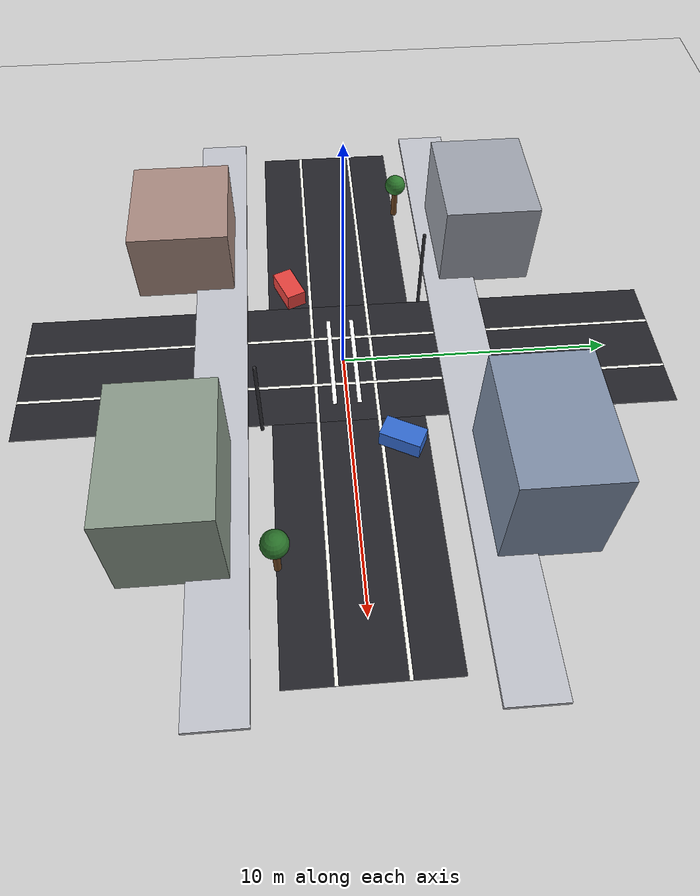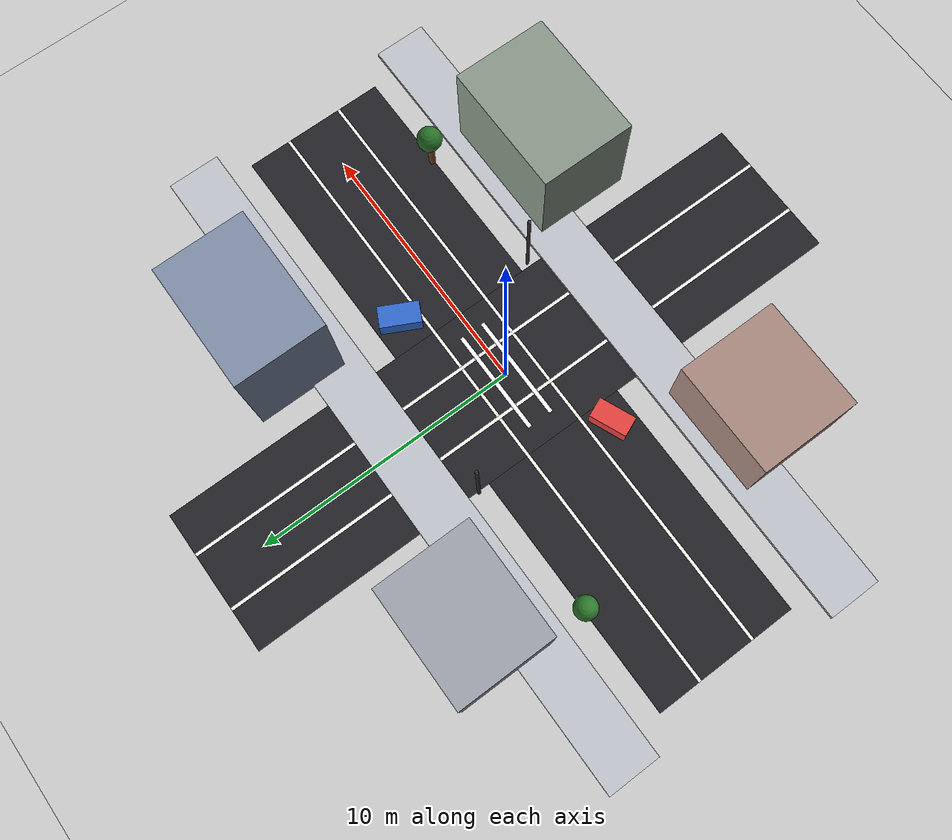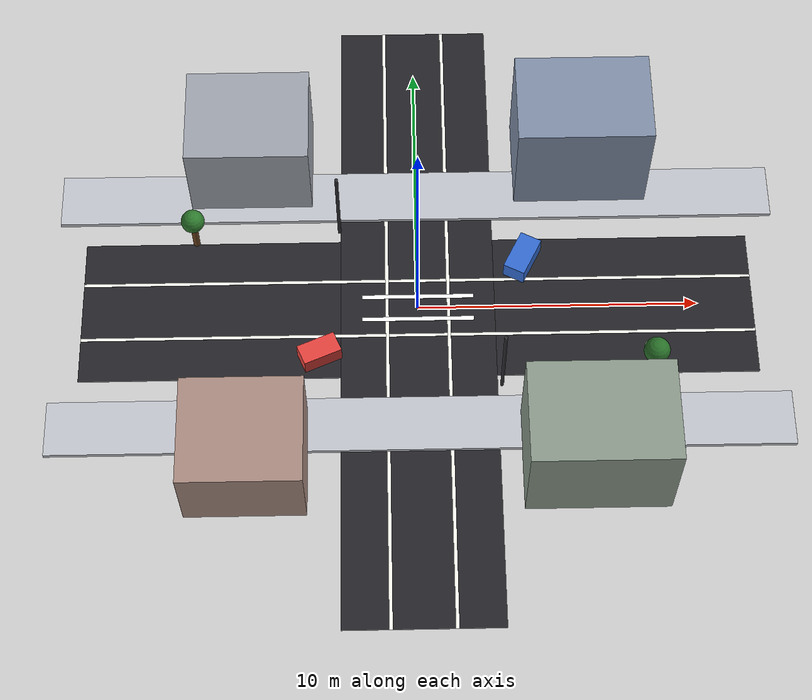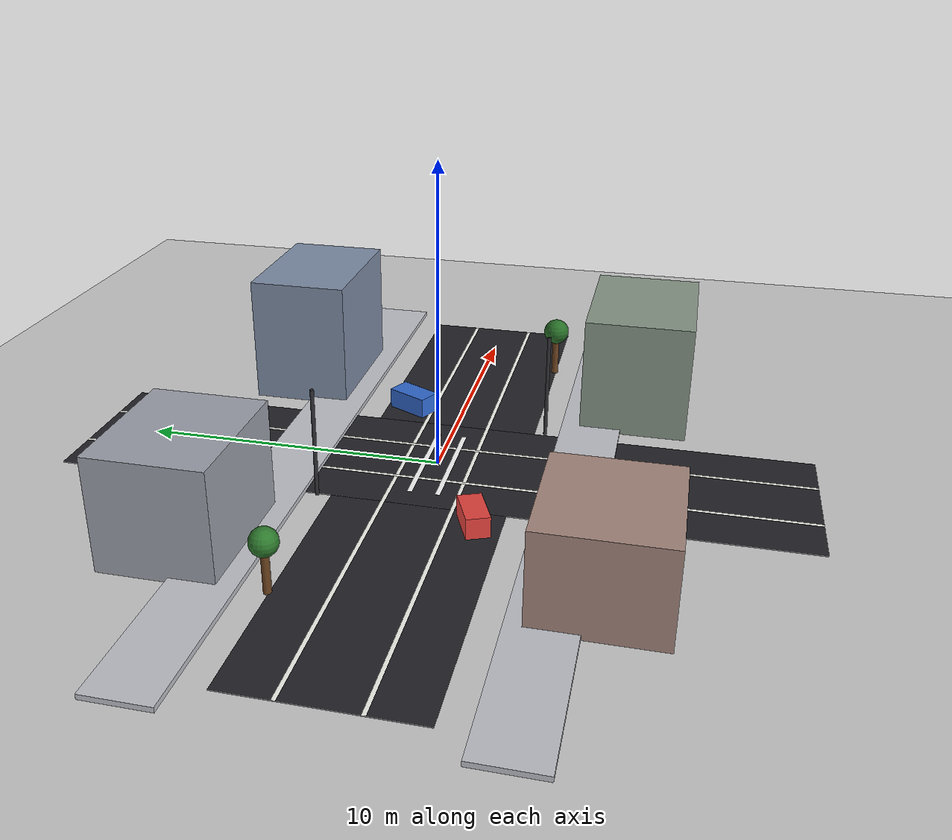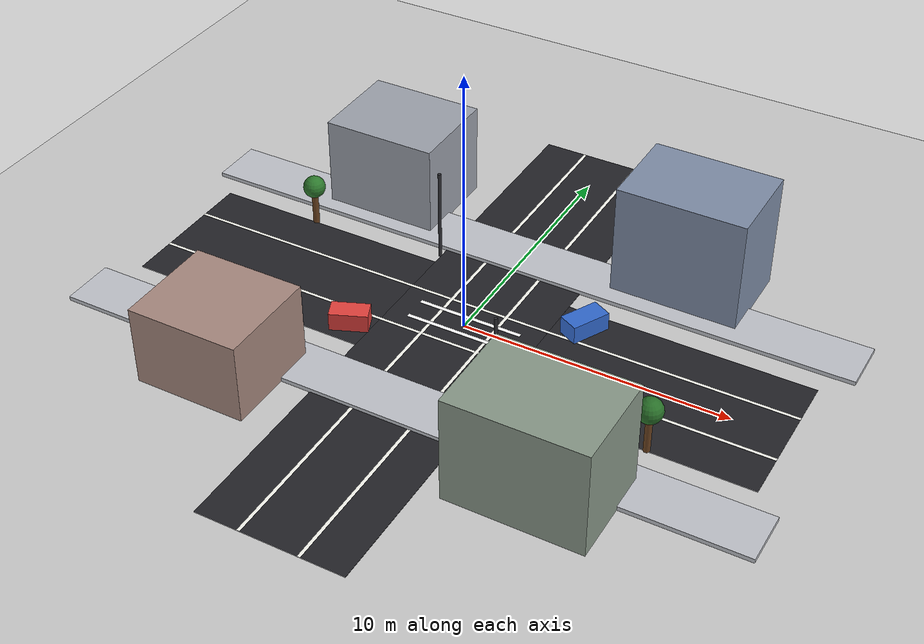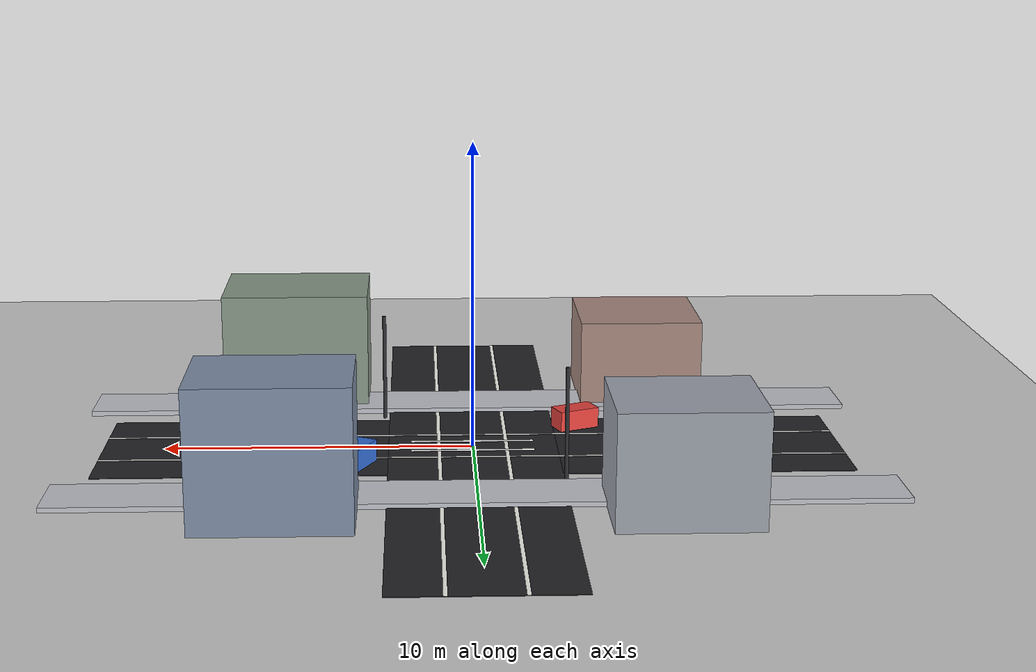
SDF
<?xml version="1.0" encoding='utf-8'?>
<sdf version="1.7">
  <world name="gimbal_sim_world">

    <gravity>0 0 -9.8</gravity>
    <magnetic_field>6e-06 2.3e-05 -4.2e-05</magnetic_field>

    <scene>
      <grid>false</grid>
      <ambient>0.38 0.40 0.44 1</ambient>
      <background>0.62 0.72 0.82 1</background>
      <shadows>false</shadows>
    </scene>

    <plugin filename="libignition-gazebo-physics-system.so" name="ignition::gazebo::systems::Physics">
    </plugin>

    <plugin filename="libignition-gazebo-scene-broadcaster-system.so" name="ignition::gazebo::systems::SceneBroadcaster">
    </plugin>

    <plugin filename="libignition-gazebo-user-commands-system.so" name="ignition::gazebo::systems::UserCommands">
    </plugin>

    <!-- Generates rendering sensor data -->
    <plugin filename="libignition-gazebo-sensors-system.so" name="ignition::gazebo::systems::Sensors">
      <render_engine>ogre</render_engine>
    </plugin>

    <plugin filename="libignition-gazebo-imu-system.so" name="ignition::gazebo::systems::Imu">
    </plugin>

    <!-- Light -->
    <light type='directional' name='direct_light'>
      <cast_shadows>false</cast_shadows>
      <pose>6.35 7.6 10 0 0 0</pose>
      <diffuse>1.0 1.0 1.0 1</diffuse>
      <specular>0.5 0.5 0.5 1</specular>
      <attenuation>
        <range>1000</range>
        <constant>0.9</constant>
        <linear>0.01</linear>
        <quadratic>0.001</quadratic>
      </attenuation>
      <direction>0 0 -1</direction>
    </light>

    <!-- Ground plane -->
    <model name="ground_plane">
      <static>true</static>
      <link name="link">
        <collision name="collision">
          <geometry>
            <plane>
              <normal>0 0 1</normal>
              <size>100 100</size>
            </plane>
          </geometry>
        </collision>
        <visual name="visual">
          <geometry>
            <plane>
              <normal>0 0 1</normal>
              <size>100 100</size>
            </plane>
          </geometry>
          <material>
            <ambient>0.8 0.8 0.8 1</ambient>
            <diffuse>0.8 0.8 0.8 1</diffuse>
          </material>
        </visual>
      </link>
    </model>

    <!-- Main roads -->
    <model name="main_road_x">
      <static>true</static>
      <pose>0 0 0.01 0 0 0</pose>
      <link name="link">
        <collision name="collision">
          <geometry>
            <box>
              <size>24 5.5 0.02</size>
            </box>
          </geometry>
        </collision>
        <visual name="visual">
          <geometry>
            <box>
              <size>24 5.5 0.02</size>
            </box>
          </geometry>
          <material>
            <ambient>0.10 0.10 0.11 1</ambient>
            <diffuse>0.14 0.14 0.16 1</diffuse>
          </material>
        </visual>
      </link>
    </model>

    <model name="main_road_y">
      <static>true</static>
      <pose>0 0 0.012 0 0 0</pose>
      <link name="link">
        <collision name="collision">
          <geometry>
            <box>
              <size>5.5 24 0.02</size>
            </box>
          </geometry>
        </collision>
        <visual name="visual">
          <geometry>
            <box>
              <size>5.5 24 0.02</size>
            </box>
          </geometry>
          <material>
            <ambient>0.10 0.10 0.11 1</ambient>
            <diffuse>0.14 0.14 0.16 1</diffuse>
          </material>
        </visual>
      </link>
    </model>

    <!-- Lane markings -->
    <model name="lane_line_x1">
      <static>true</static>
      <pose>0 1.1 0.02 0 0 0</pose>
      <link name="link">
        <visual name="visual">
          <geometry>
            <box>
              <size>24 0.12 0.01</size>
            </box>
          </geometry>
          <material>
            <ambient>0.95 0.95 0.90 1</ambient>
            <diffuse>0.98 0.98 0.95 1</diffuse>
          </material>
        </visual>
      </link>
    </model>

    <model name="lane_line_x2">
      <static>true</static>
      <pose>0 -1.1 0.02 0 0 0</pose>
      <link name="link">
        <visual name="visual">
          <geometry>
            <box>
              <size>24 0.12 0.01</size>
            </box>
          </geometry>
          <material>
            <ambient>0.95 0.95 0.90 1</ambient>
            <diffuse>0.98 0.98 0.95 1</diffuse>
          </material>
        </visual>
      </link>
    </model>

    <model name="lane_line_y1">
      <static>true</static>
      <pose>1.1 0 0.021 0 0 0</pose>
      <link name="link">
        <visual name="visual">
          <geometry>
            <box>
              <size>0.12 24 0.01</size>
            </box>
          </geometry>
          <material>
            <ambient>0.95 0.95 0.90 1</ambient>
            <diffuse>0.98 0.98 0.95 1</diffuse>
          </material>
        </visual>
      </link>
    </model>

    <model name="lane_line_y2">
      <static>true</static>
      <pose>-1.1 0 0.021 0 0 0</pose>
      <link name="link">
        <visual name="visual">
          <geometry>
            <box>
              <size>0.12 24 0.01</size>
            </box>
          </geometry>
          <material>
            <ambient>0.95 0.95 0.90 1</ambient>
            <diffuse>0.98 0.98 0.95 1</diffuse>
          </material>
        </visual>
      </link>
    </model>

    <!-- Crosswalk -->
    <model name="crosswalk_1">
      <static>true</static>
      <pose>0 0.45 0.023 0 0 0</pose>
      <link name="link">
        <visual name="visual">
          <geometry>
            <box>
              <size>4.0 0.16 0.01</size>
            </box>
          </geometry>
          <material>
            <ambient>0.98 0.98 0.98 1</ambient>
            <diffuse>1 1 1 1</diffuse>
          </material>
        </visual>
      </link>
    </model>

    <model name="crosswalk_2">
      <static>true</static>
      <pose>0 -0.45 0.023 0 0 0</pose>
      <link name="link">
        <visual name="visual">
          <geometry>
            <box>
              <size>4.0 0.16 0.01</size>
            </box>
          </geometry>
          <material>
            <ambient>0.98 0.98 0.98 1</ambient>
            <diffuse>1 1 1 1</diffuse>
          </material>
        </visual>
      </link>
    </model>

    <!-- Sidewalk blocks -->
    <model name="sidewalk_north">
      <static>true</static>
      <pose>0 4.6 0.08 0 0 0</pose>
      <link name="link">
        <collision name="collision">
          <geometry>
            <box>
              <size>26 2.0 0.16</size>
            </box>
          </geometry>
        </collision>
        <visual name="visual">
          <geometry>
            <box>
              <size>26 2.0 0.16</size>
            </box>
          </geometry>
          <material>
            <ambient>0.68 0.69 0.72 1</ambient>
            <diffuse>0.76 0.77 0.80 1</diffuse>
          </material>
        </visual>
      </link>
    </model>

    <model name="sidewalk_south">
      <static>true</static>
      <pose>0 -4.6 0.08 0 0 0</pose>
      <link name="link">
        <collision name="collision">
          <geometry>
            <box>
              <size>26 2.0 0.16</size>
            </box>
          </geometry>
        </collision>
        <visual name="visual">
          <geometry>
            <box>
              <size>26 2.0 0.16</size>
            </box>
          </geometry>
          <material>
            <ambient>0.68 0.69 0.72 1</ambient>
            <diffuse>0.76 0.77 0.80 1</diffuse>
          </material>
        </visual>
      </link>
    </model>

    <!-- Buildings around the intersection -->
    <model name="building_nw">
      <static>true</static>
      <pose>-6 6 1.8 0 0 0</pose>
      <link name="link">
        <collision name="collision">
          <geometry>
            <box>
              <size>4.4 3.6 3.6</size>
            </box>
          </geometry>
        </collision>
        <visual name="visual">
          <geometry>
            <box>
              <size>4.4 3.6 3.6</size>
            </box>
          </geometry>
          <material>
            <ambient>0.52 0.52 0.56 1</ambient>
            <diffuse>0.62 0.64 0.68 1</diffuse>
          </material>
        </visual>
      </link>
    </model>

    <model name="building_ne">
      <static>true</static>
      <pose>6 6 2.2 0 0 0</pose>
      <link name="link">
        <collision name="collision">
          <geometry>
            <box>
              <size>4.8 3.4 4.4</size>
            </box>
          </geometry>
        </collision>
        <visual name="visual">
          <geometry>
            <box>
              <size>4.8 3.4 4.4</size>
            </box>
          </geometry>
          <material>
            <ambient>0.40 0.46 0.54 1</ambient>
            <diffuse>0.50 0.56 0.66 1</diffuse>
          </material>
        </visual>
      </link>
    </model>

    <model name="building_sw">
      <static>true</static>
      <pose>-6 -6 1.5 0 0 0</pose>
      <link name="link">
        <collision name="collision">
          <geometry>
            <box>
              <size>4.2 3.8 3.0</size>
            </box>
          </geometry>
        </collision>
        <visual name="visual">
          <geometry>
            <box>
              <size>4.2 3.8 3.0</size>
            </box>
          </geometry>
          <material>
            <ambient>0.56 0.45 0.42 1</ambient>
            <diffuse>0.66 0.54 0.50 1</diffuse>
          </material>
        </visual>
      </link>
    </model>

    <model name="building_se">
      <static>true</static>
      <pose>6 -6 2.0 0 0 0</pose>
      <link name="link">
        <collision name="collision">
          <geometry>
            <box>
              <size>5.0 3.6 4.0</size>
            </box>
          </geometry>
        </collision>
        <visual name="visual">
          <geometry>
            <box>
              <size>5.0 3.6 4.0</size>
            </box>
          </geometry>
          <material>
            <ambient>0.44 0.50 0.44 1</ambient>
            <diffuse>0.54 0.60 0.54 1</diffuse>
          </material>
        </visual>
      </link>
    </model>

    <!-- Street furniture for scale and depth cues -->
    <model name="lamp_post_1">
      <static>true</static>
      <pose>-2.8 3.2 1.8 0 0 0</pose>
      <link name="link">
        <collision name="collision">
          <geometry>
            <cylinder>
              <radius>0.06</radius>
              <length>3.6</length>
            </cylinder>
          </geometry>
        </collision>
        <visual name="visual">
          <geometry>
            <cylinder>
              <radius>0.06</radius>
              <length>3.6</length>
            </cylinder>
          </geometry>
          <material>
            <ambient>0.12 0.12 0.13 1</ambient>
            <diffuse>0.18 0.18 0.20 1</diffuse>
          </material>
        </visual>
      </link>
    </model>

    <model name="lamp_post_2">
      <static>true</static>
      <pose>2.9 -3.1 1.8 0 0 0</pose>
      <link name="link">
        <collision name="collision">
          <geometry>
            <cylinder>
              <radius>0.06</radius>
              <length>3.6</length>
            </cylinder>
          </geometry>
        </collision>
        <visual name="visual">
          <geometry>
            <cylinder>
              <radius>0.06</radius>
              <length>3.6</length>
            </cylinder>
          </geometry>
          <material>
            <ambient>0.12 0.12 0.13 1</ambient>
            <diffuse>0.18 0.18 0.20 1</diffuse>
          </material>
        </visual>
      </link>
    </model>

    <model name="parked_car_1">
      <static>true</static>
      <pose>-3.5 -1.9 0.35 0 0 0.4</pose>
      <link name="link">
        <collision name="collision">
          <geometry>
            <box>
              <size>1.4 0.75 0.7</size>
            </box>
          </geometry>
        </collision>
        <visual name="visual">
          <geometry>
            <box>
              <size>1.4 0.75 0.7</size>
            </box>
          </geometry>
          <material>
            <ambient>0.82 0.20 0.18 1</ambient>
            <diffuse>0.90 0.26 0.24 1</diffuse>
          </material>
        </visual>
      </link>
    </model>

    <model name="parked_car_2">
      <static>true</static>
      <pose>3.8 1.8 0.35 0 0 1.1</pose>
      <link name="link">
        <collision name="collision">
          <geometry>
            <box>
              <size>1.5 0.8 0.72</size>
            </box>
          </geometry>
        </collision>
        <visual name="visual">
          <geometry>
            <box>
              <size>1.5 0.8 0.72</size>
            </box>
          </geometry>
          <material>
            <ambient>0.15 0.35 0.72 1</ambient>
            <diffuse>0.20 0.42 0.82 1</diffuse>
          </material>
        </visual>
      </link>
    </model>

    <model name="tree_1">
      <static>true</static>
      <pose>-8.0 2.8 0.65 0 0 0</pose>
      <link name="link">
        <collision name="collision">
          <geometry>
            <cylinder>
              <radius>0.12</radius>
              <length>1.3</length>
            </cylinder>
          </geometry>
        </collision>
        <visual name="trunk">
          <geometry>
            <cylinder>
              <radius>0.12</radius>
              <length>1.3</length>
            </cylinder>
          </geometry>
          <material>
            <ambient>0.36 0.22 0.10 1</ambient>
            <diffuse>0.42 0.26 0.12 1</diffuse>
          </material>
        </visual>
        <visual name="crown">
          <pose>0 0 0.95 0 0 0</pose>
          <geometry>
            <sphere>
              <radius>0.42</radius>
            </sphere>
          </geometry>
          <material>
            <ambient>0.14 0.38 0.16 1</ambient>
            <diffuse>0.18 0.48 0.18 1</diffuse>
          </material>
        </visual>
      </link>
    </model>

    <model name="tree_2">
      <static>true</static>
      <pose>8.2 -2.7 0.7 0 0 0</pose>
      <link name="link">
        <collision name="collision">
          <geometry>
            <cylinder>
              <radius>0.12</radius>
              <length>1.4</length>
            </cylinder>
          </geometry>
        </collision>
        <visual name="trunk">
          <geometry>
            <cylinder>
              <radius>0.12</radius>
              <length>1.4</length>
            </cylinder>
          </geometry>
          <material>
            <ambient>0.36 0.22 0.10 1</ambient>
            <diffuse>0.42 0.26 0.12 1</diffuse>
          </material>
        </visual>
        <visual name="crown">
          <pose>0 0 1.0 0 0 0</pose>
          <geometry>
            <sphere>
              <radius>0.46</radius>
            </sphere>
          </geometry>
          <material>
            <ambient>0.12 0.34 0.15 1</ambient>
            <diffuse>0.16 0.44 0.16 1</diffuse>
          </material>
        </visual>
      </link>
    </model>

  </world>
</sdf>
